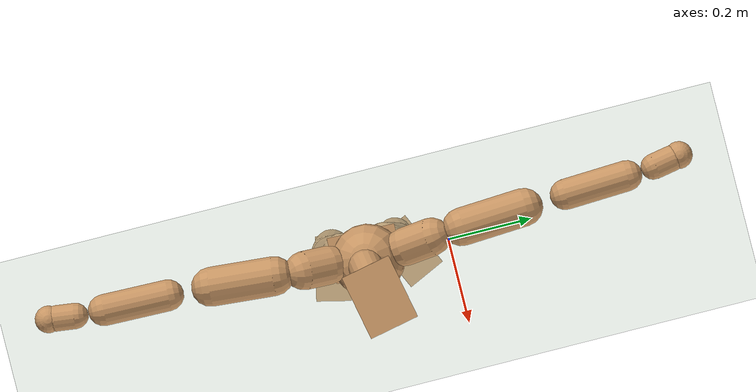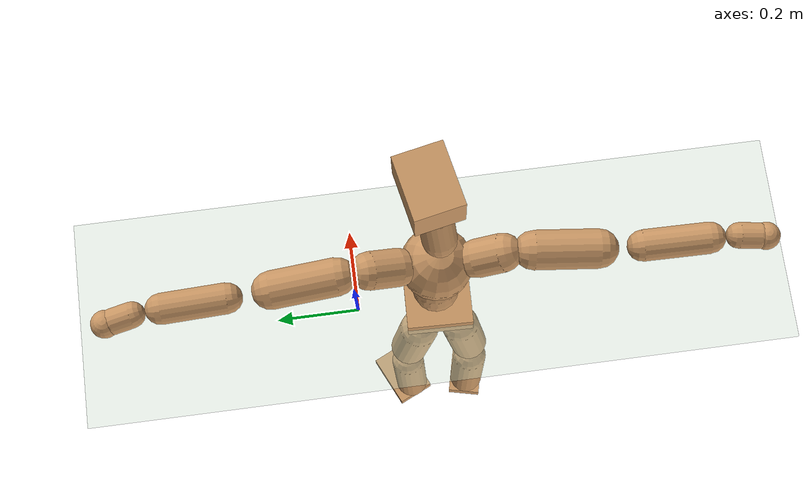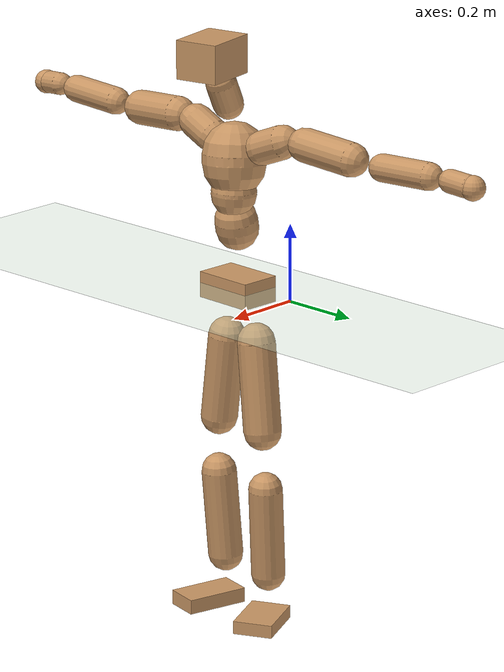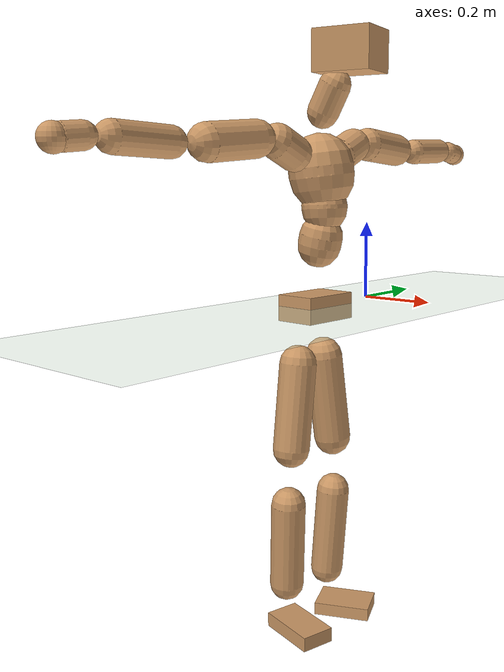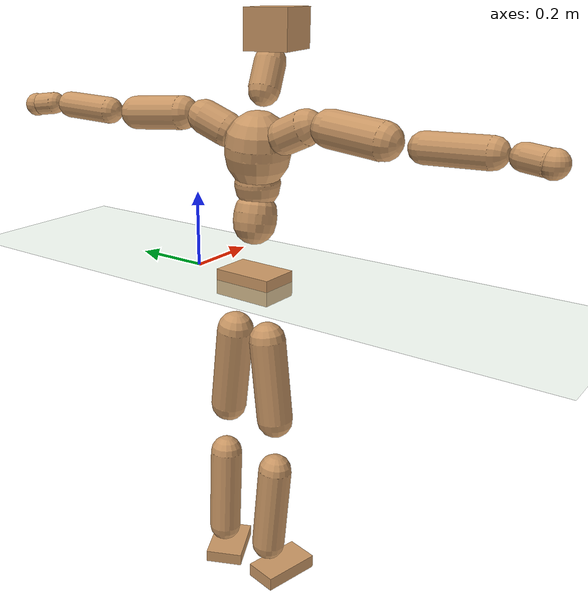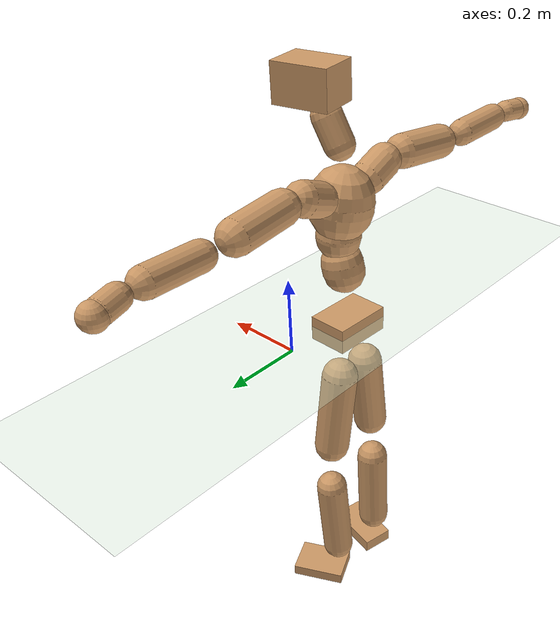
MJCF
<mujoco model="humanoid">
  <compiler coordinate="local" angle="radian"/>
  <default>
    <joint damping="0.0" armature="0.01" stiffness="0.0" limited="true"/>
    <geom conaffinity="1" condim="3" contype="7" margin="0.001" rgba="0.8 0.6 .4 1"/>
  </default>
  <asset>
    <texture type="skybox" builtin="gradient" rgb1=".4 .5 .6" rgb2="0 0 0" width="100" height="100"/>
    <texture builtin="flat" height="1278" mark="cross" markrgb="1 1 1" name="texgeom" random="0.01" rgb1="0.8 0.6 0.4" rgb2="0.8 0.6 0.4" type="cube" width="127"/>
    <texture builtin="checker" height="100" name="texplane" rgb1="0 0 0" rgb2="0.8 0.8 0.8" type="2d" width="100"/>
    <material name="MatPlane" reflectance="0.5" shininess="1" specular="1" texrepeat="60 60" texture="texplane"/>
    <material name="geom" texture="texgeom" texuniform="true"/>
  </asset>
  <worldbody>
    <light cutoff="100" diffuse="1 1 1" dir="-0 0 -1.3" directional="true" exponent="1" pos="0 0 1.3" specular=".1 .1 .1"/>
    <geom conaffinity="1" condim="3" name="floor" pos="0 0 0" rgba="0.8 0.9 0.8 1" size="100 100 .2" type="plane" material="MatPlane"/>
    <body name="Pelvis" pos="-0.0044 -0.1968 0.0015">
      <freejoint name="Pelvis"/>
      <geom type="box" contype="1" conaffinity="1" density="500" pos="-0.0113 0.0003 -0.0082" size="0.0543 0.0807 0.0337" quat="0.9999 0.0000 0.0000 -0.0147" name="Pelvis"/>
      <body name="L_Hip" pos="-0.0278 0.0416 -0.07">
        <joint name="L_Hip_x" type="hinge" pos="0 0 0" axis="1 0 0" stiffness="800" damping="80" armature="0.02" range="-180.0000 180.0000"/>
        <joint name="L_Hip_y" type="hinge" pos="0 0 0" axis="0 1 0" stiffness="800" damping="80" armature="0.02" range="-180.0000 180.0000"/>
        <joint name="L_Hip_z" type="hinge" pos="0 0 0" axis="0 0 1" stiffness="800" damping="80" armature="0.02" range="-180.0000 180.0000"/>
        <geom type="capsule" contype="1" conaffinity="1" density="500" fromto="0.0026 0.0098 -0.0771 0.0104 0.0393 -0.3083" size="0.049" name="L_Hip"/>
        <body name="L_Knee" pos="0.013 0.0491 -0.3853">
          <joint name="L_Knee_x" type="hinge" pos="0 0 0" axis="1 0 0" stiffness="800" damping="80" armature="0.02" range="-180.0000 180.0000"/>
          <joint name="L_Knee_y" type="hinge" pos="0 0 0" axis="0 1 0" stiffness="800" damping="80" armature="0.02" range="-180.0000 180.0000"/>
          <joint name="L_Knee_z" type="hinge" pos="0 0 0" axis="0 0 1" stiffness="800" damping="80" armature="0.02" range="-180.0000 180.0000"/>
          <geom type="capsule" contype="1" conaffinity="1" density="500" fromto="-0.0054 -0.0018 -0.0787 -0.0216 -0.0071 -0.3147" size="0.0443" name="L_Knee"/>
          <body name="L_Ankle" pos="-0.027 -0.0089 -0.3933">
            <joint name="L_Ankle_x" type="hinge" pos="0 0 0" axis="1 0 0" stiffness="800" damping="80" armature="0.02" range="-180.0000 180.0000"/>
            <joint name="L_Ankle_y" type="hinge" pos="0 0 0" axis="0 1 0" stiffness="800" damping="80" armature="0.02" range="-180.0000 180.0000"/>
            <joint name="L_Ankle_z" type="hinge" pos="0 0 0" axis="0 0 1" stiffness="800" damping="80" armature="0.02" range="-180.0000 180.0000"/>
            <geom type="box" contype="1" conaffinity="1" density="500" pos="0.0540 0.0252 -0.0284" size="0.0759 0.0516 0.0171" quat="0.9762 0.0000 0.0000 0.2168" name="L_Ankle"/>
            <body name="L_Toe" pos="0.108 0.0505 -0.0567">
              <joint name="L_Toe_x" type="hinge" pos="0 0 0" axis="1 0 0" stiffness="500" damping="50" armature="0.02" range="-180.0000 180.0000"/>
              <joint name="L_Toe_y" type="hinge" pos="0 0 0" axis="0 1 0" stiffness="500" damping="50" armature="0.02" range="-180.0000 180.0000"/>
              <joint name="L_Toe_z" type="hinge" pos="0 0 0" axis="0 0 1" stiffness="500" damping="50" armature="0.02" range="-180.0000 180.0000"/>
              <geom type="box" contype="1" conaffinity="1" density="500" pos="0.0000 0.0000 0.0313" size="0.001 0.0025 0.001" quat="0.9753 0.0000 0.0000 0.2207" name="L_Toe"/>
            </body>
          </body>
        </body>
      </body>
      <body name="R_Hip" pos="-0.0256 -0.0437 -0.0773">
        <joint name="R_Hip_x" type="hinge" pos="0 0 0" axis="1 0 0" stiffness="800" damping="80" armature="0.02" range="-180.0000 180.0000"/>
        <joint name="R_Hip_y" type="hinge" pos="0 0 0" axis="0 1 0" stiffness="800" damping="80" armature="0.02" range="-180.0000 180.0000"/>
        <joint name="R_Hip_z" type="hinge" pos="0 0 0" axis="0 0 1" stiffness="800" damping="80" armature="0.02" range="-180.0000 180.0000"/>
        <geom type="capsule" contype="1" conaffinity="1" density="500" fromto="0.0000 -0.0092 -0.0747 0.0000 -0.0366 -0.2990" size="0.0479" name="R_Hip"/>
        <body name="R_Knee" pos="0 -0.0458 -0.3737">
          <joint name="R_Knee_x" type="hinge" pos="0 0 0" axis="1 0 0" stiffness="800" damping="80" armature="0.02" range="-180.0000 180.0000"/>
          <joint name="R_Knee_y" type="hinge" pos="0 0 0" axis="0 1 0" stiffness="800" damping="80" armature="0.02" range="-180.0000 180.0000"/>
          <joint name="R_Knee_z" type="hinge" pos="0 0 0" axis="0 0 1" stiffness="800" damping="80" armature="0.02" range="-180.0000 180.0000"/>
          <geom type="capsule" contype="1" conaffinity="1" density="500" fromto="-0.0049 0.0030 -0.0771 -0.0198 0.0120 -0.3085" size="0.0454" name="R_Knee"/>
          <body name="R_Ankle" pos="-0.0247 0.015 -0.3856">
            <joint name="R_Ankle_x" type="hinge" pos="0 0 0" axis="1 0 0" stiffness="800" damping="80" armature="0.02" range="-180.0000 180.0000"/>
            <joint name="R_Ankle_y" type="hinge" pos="0 0 0" axis="0 1 0" stiffness="800" damping="80" armature="0.02" range="-180.0000 180.0000"/>
            <joint name="R_Ankle_z" type="hinge" pos="0 0 0" axis="0 0 1" stiffness="800" damping="80" armature="0.02" range="-180.0000 180.0000"/>
            <geom type="box" contype="1" conaffinity="1" density="500" pos="0.0584 -0.0136 -0.0301" size="0.0827 0.0449 0.0192" quat="0.9935 0.0000 0.0000 -0.1139" name="R_Ankle"/>
            <body name="R_Toe" pos="0.1167 -0.0271 -0.0602">
              <joint name="R_Toe_x" type="hinge" pos="0 0 0" axis="1 0 0" stiffness="500" damping="50" armature="0.02" range="-180.0000 180.0000"/>
              <joint name="R_Toe_y" type="hinge" pos="0 0 0" axis="0 1 0" stiffness="500" damping="50" armature="0.02" range="-180.0000 180.0000"/>
              <joint name="R_Toe_z" type="hinge" pos="0 0 0" axis="0 0 1" stiffness="500" damping="50" armature="0.02" range="-180.0000 180.0000"/>
              <geom type="box" contype="1" conaffinity="1" density="500" pos="0.0000 0.0000 0.0328" size="0.0009 0.0022 0.0011" quat="0.9946 0.0000 0.0000 -0.1040" name="R_Toe"/>
            </body>
          </body>
        </body>
      </body>
      <body name="Torso" pos="-0.0147 0.0041 0.0983">
        <joint name="Torso_x" type="hinge" pos="0 0 0" axis="1 0 0" stiffness="1000" damping="100" armature="0.02" range="-180.0000 180.0000"/>
        <joint name="Torso_y" type="hinge" pos="0 0 0" axis="0 1 0" stiffness="1000" damping="100" armature="0.02" range="-180.0000 180.0000"/>
        <joint name="Torso_z" type="hinge" pos="0 0 0" axis="0 0 1" stiffness="1000" damping="100" armature="0.02" range="-180.0000 180.0000"/>
        <geom type="capsule" contype="1" conaffinity="1" density="500" fromto="0.0159 0.0023 0.0734 0.0106 0.0015 0.0489" size="0.0551" name="Torso"/>
        <body name="Spine" pos="0.0265 0.0039 0.1223">
          <joint name="Spine_x" type="hinge" pos="0 0 0" axis="1 0 0" stiffness="1000" damping="100" armature="0.02" range="-180.0000 180.0000"/>
          <joint name="Spine_y" type="hinge" pos="0 0 0" axis="0 1 0" stiffness="1000" damping="100" armature="0.02" range="-180.0000 180.0000"/>
          <joint name="Spine_z" type="hinge" pos="0 0 0" axis="0 0 1" stiffness="1000" damping="100" armature="0.02" range="-180.0000 180.0000"/>
          <geom type="capsule" contype="1" conaffinity="1" density="500" fromto="-0.0013 -0.0002 0.0291 -0.0009 -0.0002 0.0194" size="0.058" name="Spine"/>
          <body name="Chest" pos="-0.0022 -0.0004 0.0485">
            <joint name="Chest_x" type="hinge" pos="0 0 0" axis="1 0 0" stiffness="1000" damping="100" armature="0.02" range="-180.0000 180.0000"/>
            <joint name="Chest_y" type="hinge" pos="0 0 0" axis="0 1 0" stiffness="1000" damping="100" armature="0.02" range="-180.0000 180.0000"/>
            <joint name="Chest_z" type="hinge" pos="0 0 0" axis="0 0 1" stiffness="1000" damping="100" armature="0.02" range="-180.0000 180.0000"/>
            <geom type="capsule" contype="1" conaffinity="1" density="500" fromto="-0.0068 -0.0056 0.0741 -0.0045 -0.0037 0.0494" size="0.0822" name="Chest"/>
            <body name="Neck" pos="-0.0044 -0.0153 0.1819">
              <joint name="Neck_x" type="hinge" pos="0 0 0" axis="1 0 0" stiffness="500" damping="50" armature="0.02" range="-180.0000 180.0000"/>
              <joint name="Neck_y" type="hinge" pos="0 0 0" axis="0 1 0" stiffness="500" damping="50" armature="0.02" range="-180.0000 180.0000"/>
              <joint name="Neck_z" type="hinge" pos="0 0 0" axis="0 0 1" stiffness="500" damping="50" armature="0.02" range="-180.0000 180.0000"/>
              <geom type="capsule" contype="1" conaffinity="1" density="500" fromto="0.0108 0.0019 0.0209 0.0432 0.0076 0.0834" size="0.0392" name="Neck"/>
              <body name="Head" pos="0.0539 0.0095 0.1043">
                <joint name="Head_x" type="hinge" pos="0 0 0" axis="1 0 0" stiffness="500" damping="50" armature="0.02" range="-180.0000 180.0000"/>
                <joint name="Head_y" type="hinge" pos="0 0 0" axis="0 1 0" stiffness="500" damping="50" armature="0.02" range="-180.0000 180.0000"/>
                <joint name="Head_z" type="hinge" pos="0 0 0" axis="0 0 1" stiffness="500" damping="50" armature="0.02" range="-180.0000 180.0000"/>
                <geom type="box" contype="1" conaffinity="1" density="500" pos="0.0280 0.0058 0.0531" size="0.0739 0.0567 0.0495" quat="0.9949 0.0000 0.0000 0.1013" name="Head"/>
              </body>
            </body>
            <body name="L_Thorax" pos="-0.0127 0.0607 0.0943">
              <joint name="L_Thorax_x" type="hinge" pos="0 0 0" axis="1 0 0" stiffness="500" damping="50" armature="0.02" range="-180.0000 180.0000"/>
              <joint name="L_Thorax_y" type="hinge" pos="0 0 0" axis="0 1 0" stiffness="500" damping="50" armature="0.02" range="-180.0000 180.0000"/>
              <joint name="L_Thorax_z" type="hinge" pos="0 0 0" axis="0 0 1" stiffness="500" damping="50" armature="0.02" range="-180.0000 180.0000"/>
              <geom type="capsule" contype="1" conaffinity="1" density="500" fromto="-0.0024 0.0215 0.0087 -0.0094 0.0858 0.0348" size="0.0436" name="L_Thorax"/>
              <body name="L_Shoulder" pos="-0.0118 0.1073 0.0435">
                <joint name="L_Shoulder_x" type="hinge" pos="0 0 0" axis="1 0 0" stiffness="500" damping="50" armature="0.02" range="-720.0000 720.0000"/>
                <joint name="L_Shoulder_y" type="hinge" pos="0 0 0" axis="0 1 0" stiffness="500" damping="50" armature="0.02" range="-720.0000 720.0000"/>
                <joint name="L_Shoulder_z" type="hinge" pos="0 0 0" axis="0 0 1" stiffness="500" damping="50" armature="0.02" range="-720.0000 720.0000"/>
                <geom type="capsule" contype="1" conaffinity="1" density="500" fromto="-0.0028 0.0491 -0.0036 -0.0111 0.1964 -0.0146" size="0.0433" name="L_Shoulder"/>
                <body name="L_Elbow" pos="-0.0138 0.2455 -0.0182">
                  <joint name="L_Elbow_x" type="hinge" pos="0 0 0" axis="1 0 0" stiffness="500" damping="50" armature="0.02" range="-720.0000 720.0000"/>
                  <joint name="L_Elbow_y" type="hinge" pos="0 0 0" axis="0 1 0" stiffness="500" damping="50" armature="0.02" range="-720.0000 720.0000"/>
                  <joint name="L_Elbow_z" type="hinge" pos="0 0 0" axis="0 0 1" stiffness="500" damping="50" armature="0.02" range="-720.0000 720.0000"/>
                  <geom type="capsule" contype="1" conaffinity="1" density="500" fromto="-0.0022 0.0482 0.0017 -0.0088 0.1926 0.0069" size="0.0349" name="L_Elbow"/>
                  <body name="L_Wrist" pos="-0.011 0.2408 0.0086">
                    <joint name="L_Wrist_x" type="hinge" pos="0 0 0" axis="1 0 0" stiffness="300" damping="30" armature="0.02" range="-180.0000 180.0000"/>
                    <joint name="L_Wrist_y" type="hinge" pos="0 0 0" axis="0 1 0" stiffness="300" damping="30" armature="0.02" range="-180.0000 180.0000"/>
                    <joint name="L_Wrist_z" type="hinge" pos="0 0 0" axis="0 0 1" stiffness="300" damping="30" armature="0.02" range="-180.0000 180.0000"/>
                    <geom type="capsule" contype="1" conaffinity="1" density="500" fromto="-0.0028 0.0154 -0.0019 -0.0112 0.0614 -0.0076" size="0.0296" name="L_Wrist"/>
                    <body name="L_Hand" pos="-0.014 0.0768 -0.0095">
                      <joint name="L_Hand_x" type="hinge" pos="0 0 0" axis="1 0 0" stiffness="300" damping="30" armature="0.02" range="-180.0000 180.0000"/>
                      <joint name="L_Hand_y" type="hinge" pos="0 0 0" axis="0 1 0" stiffness="300" damping="30" armature="0.02" range="-180.0000 180.0000"/>
                      <joint name="L_Hand_z" type="hinge" pos="0 0 0" axis="0 0 1" stiffness="300" damping="30" armature="0.02" range="-180.0000 180.0000"/>
                      <geom type="sphere" contype="1" conaffinity="1" density="500" size="0.0314" pos="0.0000 0.0000 0.0000" name="L_Hand"/>
                    </body>
                  </body>
                </body>
              </body>
            </body>
            <body name="R_Thorax" pos="-0.0168 -0.0732 0.0942">
              <joint name="R_Thorax_x" type="hinge" pos="0 0 0" axis="1 0 0" stiffness="500" damping="50" armature="0.02" range="-180.0000 180.0000"/>
              <joint name="R_Thorax_y" type="hinge" pos="0 0 0" axis="0 1 0" stiffness="500" damping="50" armature="0.02" range="-180.0000 180.0000"/>
              <joint name="R_Thorax_z" type="hinge" pos="0 0 0" axis="0 0 1" stiffness="500" damping="50" armature="0.02" range="-180.0000 180.0000"/>
              <geom type="capsule" contype="1" conaffinity="1" density="500" fromto="-0.0006 -0.0194 0.0088 -0.0024 -0.0775 0.0352" size="0.0439" name="R_Thorax"/>
              <body name="R_Shoulder" pos="-0.003 -0.0969 0.044">
                <joint name="R_Shoulder_x" type="hinge" pos="0 0 0" axis="1 0 0" stiffness="500" damping="50" armature="0.02" range="-720.0000 720.0000"/>
                <joint name="R_Shoulder_y" type="hinge" pos="0 0 0" axis="0 1 0" stiffness="500" damping="50" armature="0.02" range="-720.0000 720.0000"/>
                <joint name="R_Shoulder_z" type="hinge" pos="0 0 0" axis="0 0 1" stiffness="500" damping="50" armature="0.02" range="-720.0000 720.0000"/>
                <geom type="capsule" contype="1" conaffinity="1" density="500" fromto="-0.0039 -0.0481 -0.0041 -0.0157 -0.1923 -0.0162" size="0.0447" name="R_Shoulder"/>
                <body name="R_Elbow" pos="-0.0197 -0.2404 -0.0203">
                  <joint name="R_Elbow_x" type="hinge" pos="0 0 0" axis="1 0 0" stiffness="500" damping="50" armature="0.02" range="-720.0000 720.0000"/>
                  <joint name="R_Elbow_y" type="hinge" pos="0 0 0" axis="0 1 0" stiffness="500" damping="50" armature="0.02" range="-720.0000 720.0000"/>
                  <joint name="R_Elbow_z" type="hinge" pos="0 0 0" axis="0 0 1" stiffness="500" damping="50" armature="0.02" range="-720.0000 720.0000"/>
                  <geom type="capsule" contype="1" conaffinity="1" density="500" fromto="-0.0011 -0.0495 0.0018 -0.0045 -0.1981 0.0073" size="0.0356" name="R_Elbow"/>
                  <body name="R_Wrist" pos="-0.0056 -0.2476 0.0091">
                    <joint name="R_Wrist_x" type="hinge" pos="0 0 0" axis="1 0 0" stiffness="300" damping="30" armature="0.02" range="-180.0000 180.0000"/>
                    <joint name="R_Wrist_y" type="hinge" pos="0 0 0" axis="0 1 0" stiffness="300" damping="30" armature="0.02" range="-180.0000 180.0000"/>
                    <joint name="R_Wrist_z" type="hinge" pos="0 0 0" axis="0 0 1" stiffness="300" damping="30" armature="0.02" range="-180.0000 180.0000"/>
                    <geom type="capsule" contype="1" conaffinity="1" density="500" fromto="-0.0019 -0.0153 -0.0015 -0.0075 -0.0612 -0.0058" size="0.0295" name="R_Wrist"/>
                    <body name="R_Hand" pos="-0.0093 -0.0765 -0.0073">
                      <joint name="R_Hand_x" type="hinge" pos="0 0 0" axis="1 0 0" stiffness="300" damping="30" armature="0.02" range="-180.0000 180.0000"/>
                      <joint name="R_Hand_y" type="hinge" pos="0 0 0" axis="0 1 0" stiffness="300" damping="30" armature="0.02" range="-180.0000 180.0000"/>
                      <joint name="R_Hand_z" type="hinge" pos="0 0 0" axis="0 0 1" stiffness="300" damping="30" armature="0.02" range="-180.0000 180.0000"/>
                      <geom type="sphere" contype="1" conaffinity="1" density="500" size="0.0311" pos="0.0000 0.0000 0.0000" name="R_Hand"/>
                    </body>
                  </body>
                </body>
              </body>
            </body>
          </body>
        </body>
      </body>
    </body>
  </worldbody>
  <actuator>
    <motor name="L_Hip_x" joint="L_Hip_x" gear="500"/>
    <motor name="L_Hip_y" joint="L_Hip_y" gear="500"/>
    <motor name="L_Hip_z" joint="L_Hip_z" gear="500"/>
    <motor name="L_Knee_x" joint="L_Knee_x" gear="500"/>
    <motor name="L_Knee_y" joint="L_Knee_y" gear="500"/>
    <motor name="L_Knee_z" joint="L_Knee_z" gear="500"/>
    <motor name="L_Ankle_x" joint="L_Ankle_x" gear="500"/>
    <motor name="L_Ankle_y" joint="L_Ankle_y" gear="500"/>
    <motor name="L_Ankle_z" joint="L_Ankle_z" gear="500"/>
    <motor name="L_Toe_x" joint="L_Toe_x" gear="500"/>
    <motor name="L_Toe_y" joint="L_Toe_y" gear="500"/>
    <motor name="L_Toe_z" joint="L_Toe_z" gear="500"/>
    <motor name="R_Hip_x" joint="R_Hip_x" gear="500"/>
    <motor name="R_Hip_y" joint="R_Hip_y" gear="500"/>
    <motor name="R_Hip_z" joint="R_Hip_z" gear="500"/>
    <motor name="R_Knee_x" joint="R_Knee_x" gear="500"/>
    <motor name="R_Knee_y" joint="R_Knee_y" gear="500"/>
    <motor name="R_Knee_z" joint="R_Knee_z" gear="500"/>
    <motor name="R_Ankle_x" joint="R_Ankle_x" gear="500"/>
    <motor name="R_Ankle_y" joint="R_Ankle_y" gear="500"/>
    <motor name="R_Ankle_z" joint="R_Ankle_z" gear="500"/>
    <motor name="R_Toe_x" joint="R_Toe_x" gear="500"/>
    <motor name="R_Toe_y" joint="R_Toe_y" gear="500"/>
    <motor name="R_Toe_z" joint="R_Toe_z" gear="500"/>
    <motor name="Torso_x" joint="Torso_x" gear="500"/>
    <motor name="Torso_y" joint="Torso_y" gear="500"/>
    <motor name="Torso_z" joint="Torso_z" gear="500"/>
    <motor name="Spine_x" joint="Spine_x" gear="500"/>
    <motor name="Spine_y" joint="Spine_y" gear="500"/>
    <motor name="Spine_z" joint="Spine_z" gear="500"/>
    <motor name="Chest_x" joint="Chest_x" gear="500"/>
    <motor name="Chest_y" joint="Chest_y" gear="500"/>
    <motor name="Chest_z" joint="Chest_z" gear="500"/>
    <motor name="Neck_x" joint="Neck_x" gear="500"/>
    <motor name="Neck_y" joint="Neck_y" gear="500"/>
    <motor name="Neck_z" joint="Neck_z" gear="500"/>
    <motor name="Head_x" joint="Head_x" gear="500"/>
    <motor name="Head_y" joint="Head_y" gear="500"/>
    <motor name="Head_z" joint="Head_z" gear="500"/>
    <motor name="L_Thorax_x" joint="L_Thorax_x" gear="500"/>
    <motor name="L_Thorax_y" joint="L_Thorax_y" gear="500"/>
    <motor name="L_Thorax_z" joint="L_Thorax_z" gear="500"/>
    <motor name="L_Shoulder_x" joint="L_Shoulder_x" gear="500"/>
    <motor name="L_Shoulder_y" joint="L_Shoulder_y" gear="500"/>
    <motor name="L_Shoulder_z" joint="L_Shoulder_z" gear="500"/>
    <motor name="L_Elbow_x" joint="L_Elbow_x" gear="500"/>
    <motor name="L_Elbow_y" joint="L_Elbow_y" gear="500"/>
    <motor name="L_Elbow_z" joint="L_Elbow_z" gear="500"/>
    <motor name="L_Wrist_x" joint="L_Wrist_x" gear="500"/>
    <motor name="L_Wrist_y" joint="L_Wrist_y" gear="500"/>
    <motor name="L_Wrist_z" joint="L_Wrist_z" gear="500"/>
    <motor name="L_Hand_x" joint="L_Hand_x" gear="500"/>
    <motor name="L_Hand_y" joint="L_Hand_y" gear="500"/>
    <motor name="L_Hand_z" joint="L_Hand_z" gear="500"/>
    <motor name="R_Thorax_x" joint="R_Thorax_x" gear="500"/>
    <motor name="R_Thorax_y" joint="R_Thorax_y" gear="500"/>
    <motor name="R_Thorax_z" joint="R_Thorax_z" gear="500"/>
    <motor name="R_Shoulder_x" joint="R_Shoulder_x" gear="500"/>
    <motor name="R_Shoulder_y" joint="R_Shoulder_y" gear="500"/>
    <motor name="R_Shoulder_z" joint="R_Shoulder_z" gear="500"/>
    <motor name="R_Elbow_x" joint="R_Elbow_x" gear="500"/>
    <motor name="R_Elbow_y" joint="R_Elbow_y" gear="500"/>
    <motor name="R_Elbow_z" joint="R_Elbow_z" gear="500"/>
    <motor name="R_Wrist_x" joint="R_Wrist_x" gear="500"/>
    <motor name="R_Wrist_y" joint="R_Wrist_y" gear="500"/>
    <motor name="R_Wrist_z" joint="R_Wrist_z" gear="500"/>
    <motor name="R_Hand_x" joint="R_Hand_x" gear="500"/>
    <motor name="R_Hand_y" joint="R_Hand_y" gear="500"/>
    <motor name="R_Hand_z" joint="R_Hand_z" gear="500"/>
  </actuator>
  <contact>
    <exclude body1="Torso" body2="Chest"/>
    <exclude body1="Head" body2="Chest"/>
    <exclude body1="R_Knee" body2="R_Toe"/>
    <exclude body1="R_Knee" body2="L_Ankle"/>
    <exclude body1="R_Knee" body2="L_Toe"/>
    <exclude body1="L_Knee" body2="L_Toe"/>
    <exclude body1="L_Knee" body2="R_Ankle"/>
    <exclude body1="L_Knee" body2="R_Toe"/>
    <exclude body1="L_Shoulder" body2="Chest"/>
    <exclude body1="R_Shoulder" body2="Chest"/>
  </contact>
  <sensor/>
  <size njmax="700" nconmax="700"/>
</mujoco>
